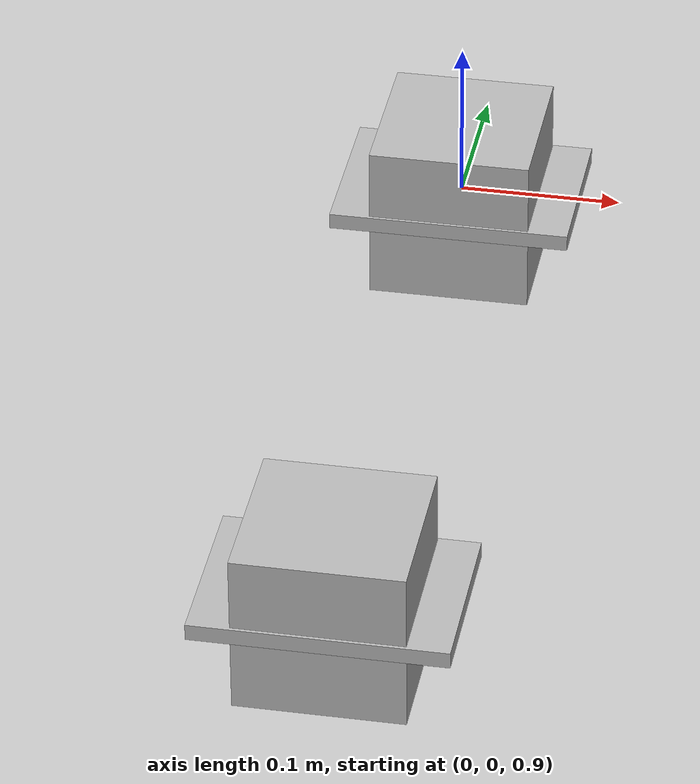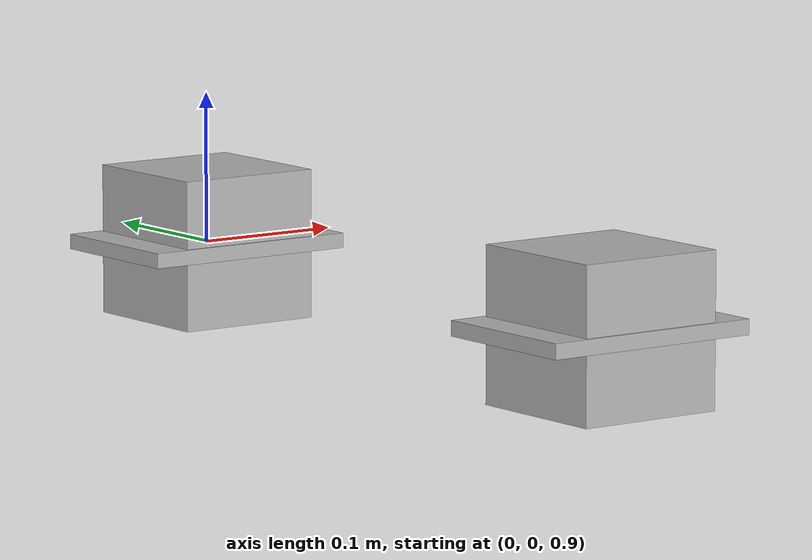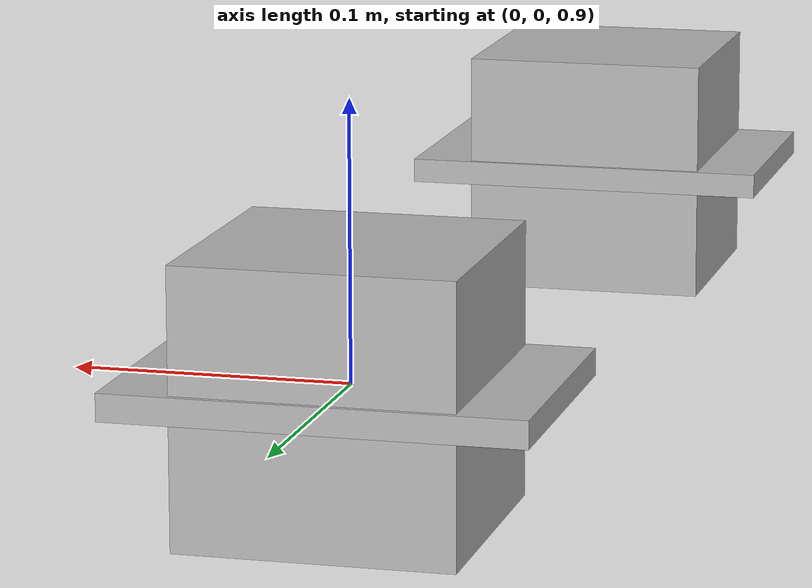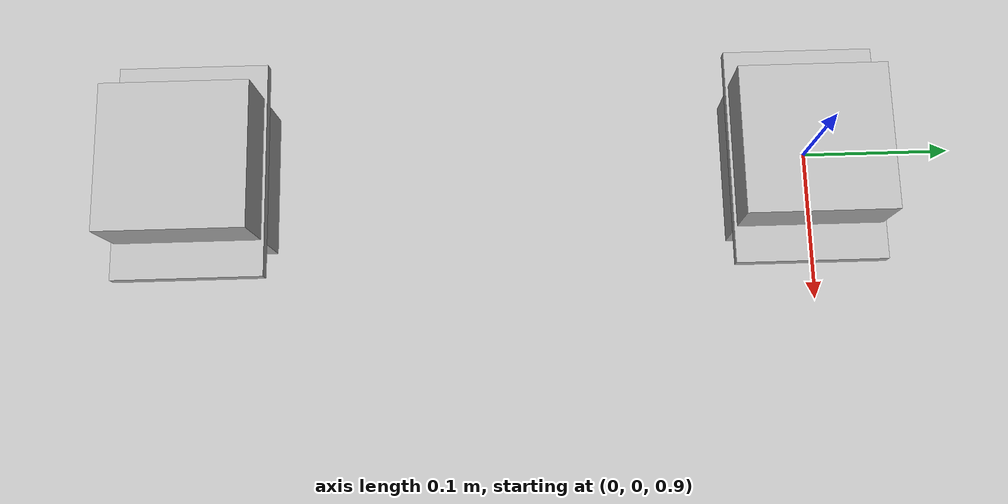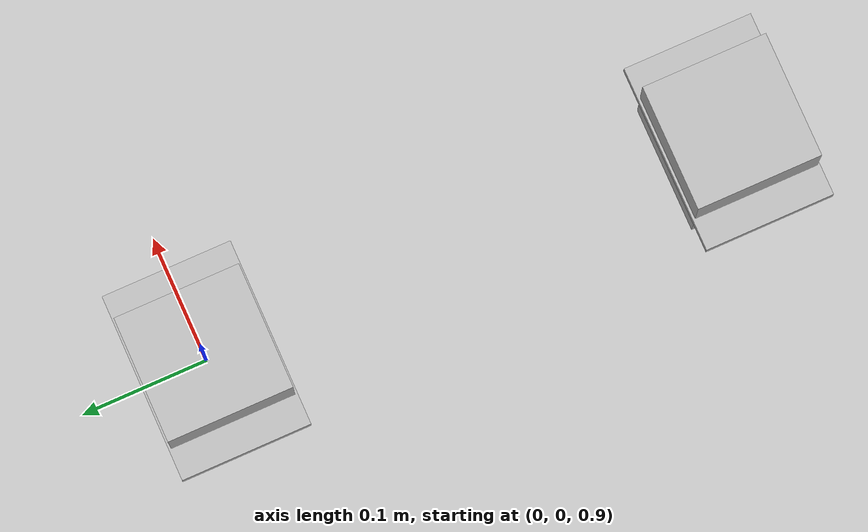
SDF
<?xml version="1.0"?>
<sdf version="1.4">
  <model name="simple_prismatic_robot_leglift_2">
    <static>false</static>
    <link name="base_link">
      <pose>0 0 0.45 0 0 0</pose>-->
      <inertial>
        <mass>100000000.</mass>
        <inertia>
          <ixx>100000000.</ixx>
          <ixy>0</ixy>
          <ixz>0</ixz>
          <iyy>100000000.</iyy>
          <iyz>0</iyz>
          <izz>100000000.</izz>
        </inertia>
      </inertial>
      <collision name='collision'>
        <geometry>
          <box>
            <size>2. 0.2 0.9</size>-->
          </box>
        </geometry>
      </collision>
      <gravity>0</gravity>
    </link>
    <link name="robot_arm_y">
      <pose>0 0 0.9 0 0 0</pose>-->
      <inertial>
        <mass>1.</mass>
        <inertia>
          <ixx>1.</ixx>
          <ixy>0</ixy>
          <ixz>0</ixz>
          <iyy>1.</iyy>
          <iyz>0</iyz>
          <izz>1.</izz>
        </inertia>
      </inertial>
      <visual name='visual'>
        <geometry>
          <box>
            <size>0.1 0.1 0.1</size>
          </box>
        </geometry>
      </visual>-->
      <gravity>0</gravity>
    </link>
    <link name="robot_arm_z">
      <pose>0 0 0.9 0 0 0</pose>-->
      <inertial>
        <mass>1.</mass>
        <inertia>
          <ixx>1.</ixx>
          <ixy>0</ixy>
          <ixz>0</ixz>
          <iyy>1.</iyy>
          <iyz>0</iyz>
          <izz>1.</izz>
        </inertia>
      </inertial>
      <visual name='visual'>
        <geometry>
          <box>
            <size>0.1 0.1 0.1</size>
          </box>
        </geometry>
      </visual>-->
      <gravity>0</gravity>
    </link>
    <link name="revolute_link">
      <pose>0. 0 0.9 0 0 0</pose>-->
      <inertial>
        <pose>0. 0 0 0 0 0</pose>
        <mass>1.</mass>
        <inertia>
          <ixx>0.1</ixx>
          <ixy>0</ixy>
          <ixz>0</ixz>
          <iyy>0.1</iyy>
          <iyz>0</iyz>
          <izz>0.1</izz>
        </inertia>
      </inertial>
      <collision name='collision'>
        <pose>0. 0 0 0 0 0</pose>
        <geometry>
          <box>
            <size>0.15 0.104 0.01</size>
          </box>
        </geometry>
        <surface>
          <friction>
            <ode>
              <mu>0.500000</mu>
              <mu2>0.500000</mu2>-->
            </ode>
          </friction>
        </surface>
      </collision>
      <visual name='visual'>
        <pose>0. 0 0 0 0 0</pose>
        <geometry>
          <box>
            <size>0.15 0.104 0.01</size>
          </box>
        </geometry>
      </visual>
      <gravity>0</gravity>
    </link>
    <link name="robot_arm_y_2">
      <pose>0 -0.425 0.9 0 0 0</pose>-->
      <inertial>
        <mass>1.</mass>
        <inertia>
          <ixx>1.</ixx>
          <ixy>0</ixy>
          <ixz>0</ixz>
          <iyy>1.</iyy>
          <iyz>0</iyz>
          <izz>1.</izz>
        </inertia>
      </inertial>
      <visual name='visual'>
        <geometry>
          <box>
            <size>0.1 0.1 0.1</size>
          </box>
        </geometry>
      </visual>-->
      <gravity>0</gravity>
    </link>
    <link name="robot_arm_z_2">
      <pose>0 -0.425 0.9 0 0 0</pose>-->
      <inertial>
        <mass>1.</mass>
        <inertia>
          <ixx>1.</ixx>
          <ixy>0</ixy>
          <ixz>0</ixz>
          <iyy>1.</iyy>
          <iyz>0</iyz>
          <izz>1.</izz>
        </inertia>
      </inertial>
      <visual name='visual'>
        <geometry>
          <box>
            <size>0.1 0.1 0.1</size>
          </box>
        </geometry>
      </visual>-->
      <gravity>0</gravity>
    </link>
    <link name="revolute_link_2">
      <pose>0. -0.425 0.9 0 0 0</pose>-->
      <inertial>
        <pose>0. 0 0 0 0 0</pose>
        <mass>1.</mass>
        <inertia>
          <ixx>0.1</ixx>
          <ixy>0</ixy>
          <ixz>0</ixz>
          <iyy>0.1</iyy>
          <iyz>0</iyz>
          <izz>0.1</izz>
        </inertia>
      </inertial>
      <collision name='collision'>
        <pose>0. 0 0 0 0 0</pose>
        <geometry>
          <box>
            <size>0.15 0.104 0.01</size>
          </box>
        </geometry>
        <surface>
          <friction>
            <ode>
              <mu>0.500000</mu>
              <mu2>0.500000</mu2>-->
            </ode>
          </friction>
        </surface>
      </collision>
      <visual name='visual'>
        <pose>0. 0 0 0 0 0</pose>
        <geometry>
          <box>
            <size>0.15 0.104 0.01</size>
          </box>
        </geometry>
      </visual>
      <gravity>0</gravity>
    </link>
    <joint name="revolute_joint" type="revolute">
      <parent>robot_arm_z</parent>
      <child>revolute_link</child>
      <axis>
        <xyz>1 0 0</xyz>
        <limit>
          <lower>-1000</lower>
          <upper>1000</upper>
        </limit>
      </axis>
      <physics>
        <ode>
          <provide_feedback>True</provide_feedback>
        </ode>
      </physics>-->
    </joint>
    <joint name="robot_joint_y" type="prismatic">
      <parent>base_link</parent>
      <child>robot_arm_y</child>
      <axis>
        <xyz>0 1 0</xyz>
        <limit>
          <lower>-1.</lower>
          <upper>1.</upper>
        </limit>
      </axis>
      <physics>
        <ode>
          <provide_feedback>True</provide_feedback>
        </ode>
      </physics>-->
    </joint>
    <joint name="robot_joint_z" type="prismatic">
      <parent>robot_arm_y</parent>
      <child>robot_arm_z</child>
      <axis>
        <xyz>0 0 1.0</xyz>
        <limit>
          <lower>0.</lower>
          <upper>1.</upper>
        </limit>
      </axis>
      <physics>
        <ode>
          <provide_feedback>True</provide_feedback>
        </ode>
      </physics>-->
    </joint>
    <joint name="revolute_joint_2" type="revolute">
      <parent>robot_arm_z_2</parent>
      <child>revolute_link_2</child>
      <axis>
        <xyz>1 0 0</xyz>
        <limit>
          <lower>-1000</lower>
          <upper>1000</upper>
        </limit>
      </axis>
      <physics>
        <ode>
          <provide_feedback>True</provide_feedback>
        </ode>
      </physics>-->
    </joint>
    <joint name="robot_joint_y_2" type="prismatic">
      <parent>base_link</parent>
      <child>robot_arm_y_2</child>
      <axis>
        <xyz>0 1 0</xyz>
        <limit>
          <lower>-1.</lower>
          <upper>1.</upper>
        </limit>
      </axis>
      <physics>
        <ode>
          <provide_feedback>True</provide_feedback>
        </ode>
      </physics>-->
    </joint>
    <joint name="robot_joint_z_2" type="prismatic">
      <parent>robot_arm_y_2</parent>
      <child>robot_arm_z_2</child>
      <axis>
        <xyz>0 0 1.0</xyz>
        <limit>
          <lower>0.</lower>
          <upper>1.</upper>
        </limit>
      </axis>
      <physics>
        <ode>
          <provide_feedback>True</provide_feedback>
        </ode>
      </physics>-->
    </joint>
    <plugin name="ros_model_plugin" filename="libros_model_plugin.so" />-->
  </model>
</sdf>
